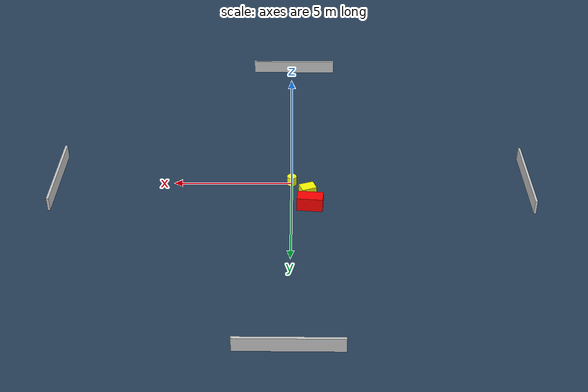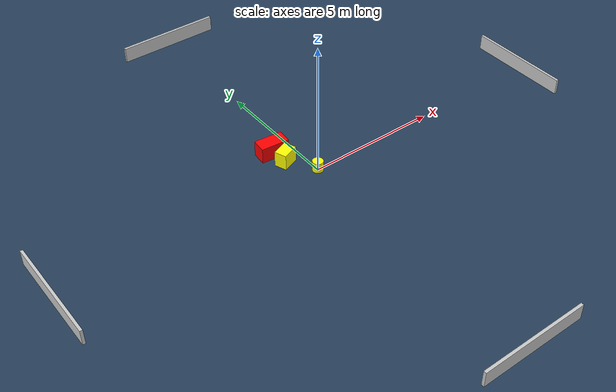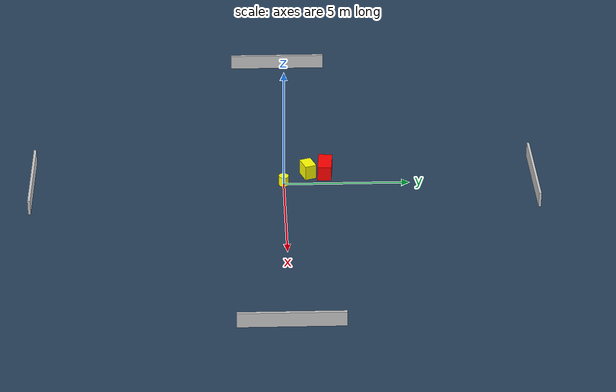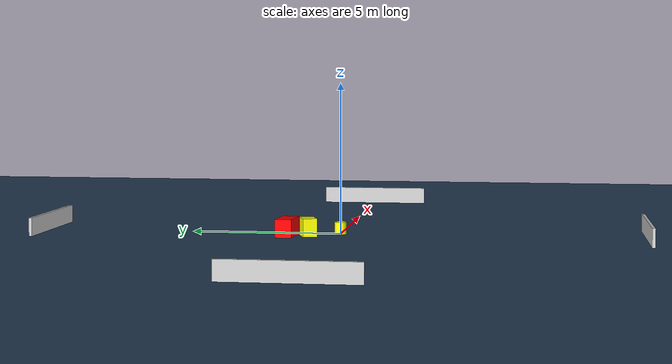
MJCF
<?xml version="1.0" ?>
<mujoco model="generated_environment">
  <option timestep="0.01" integrator="RK4" cone="elliptic"/>
  <default>
    <geom density="1"/>
  </default>
  <asset>
    <texture builtin="gradient" height="3072" name="skybox" rgb1="0.3 0.5 0.7" rgb2="0 0 0" type="skybox" width="512"/>
    <texture builtin="checker" height="300" name="groundplane" rgb1="0.2 0.3 0.4" rgb2="0.1 0.2 0.3" type="2d" width="300"/>
    <material name="groundplane" reflectance="0.2" texrepeat="5 5" texture="groundplane"/>
  </asset>
  <worldbody>
    <light dir="0 0 -1" directional="true" pos="0 0 1.5"/>
    <geom condim="3" friction="0.5 0.005 0.001" material="groundplane" name="floor" pos="0 0 0" size="0 0 0.05" type="plane"/>
    <body name="walls">
      <geom name="wall_1" condim="4" pos="-10.0 0.0 0.3" rgba="0.800000011920929 0.800000011920929 0.800000011920929 1.0" size="0.05 2.0 0.3" type="box"/>
      <geom name="wall_2" condim="4" pos="10.0 0.0 0.3" rgba="0.800000011920929 0.800000011920929 0.800000011920929 1.0" size="0.05 2.0 0.3" type="box"/>
      <geom name="wall_3" condim="4" pos="0.0 -10.0 0.3" rgba="0.800000011920929 0.800000011920929 0.800000011920929 1.0" size="2.0 0.05 0.3" type="box"/>
      <geom name="wall_4" condim="4" pos="0.0 10.0 0.3" rgba="0.800000011920929 0.800000011920929 0.800000011920929 1.0" size="2.0 0.05 0.3" type="box"/>
    </body>
    <body name="robot">
      <joint name="joint_x" type="slide" pos="0 0 0" axis="1 0 0"/>
      <joint name="joint_y" type="slide" pos="0 0 0" axis="0 1 0"/>
      <geom name="robot" type="cylinder" pos="0.0 0.0 0.2" size="0.2 0.2 0.0" mass="5.0" friction="1.0 0.005 0.0001" condim="4" rgba="1.0 1.0 0.0 1.0"/>
    </body>
    <body name="obstacle_1_movable">
      <geom name="obstacle_1_movable" condim="4" pos="-0.6704868206477033 0.9887708459885833 0.3" euler="0 0 110.19920878963421" friction="0.0 0.005 0.001" rgba="1.0 1.0 0.0 1.0" size="0.2335669521226929 0.3173492060568105 0.3" type="box" mass="0.1"/>
      <joint type="free"/>
    </body>
    <body name="obstacle_2_static">
      <geom name="obstacle_2_static" condim="4" pos="-0.7697147527594757 1.6750717859714366 0.3" euler="0 0 264.87475751169984" friction="0.0 0.005 0.001" rgba="1.0 0.0 0.0 1.0" size="0.27482864767781906 0.5305000876595121 0.3" type="box"/>
    </body>
  </worldbody>
  <actuator>
    <motor name="actuator_x" joint="joint_x" gear="1" ctrlrange="-1 1"/>
    <motor name="actuator_y" joint="joint_y" gear="1" ctrlrange="-1 1"/>
  </actuator>
</mujoco>
